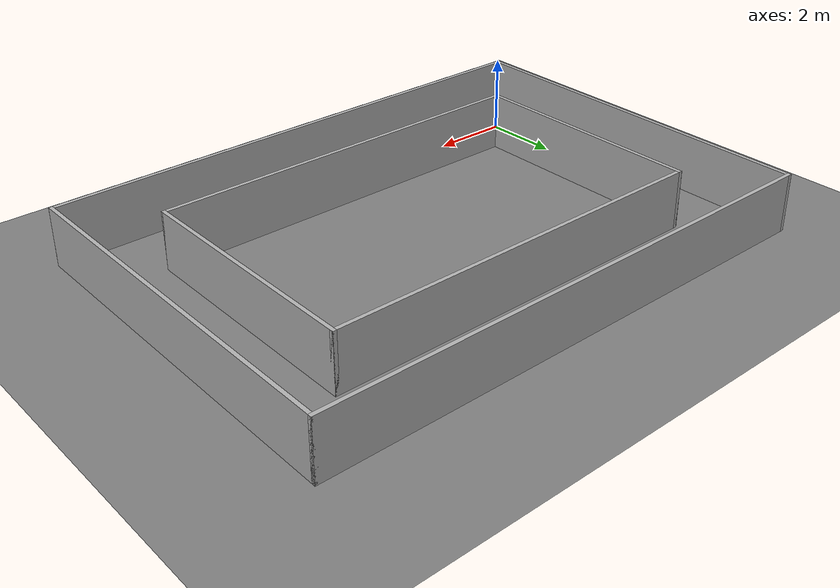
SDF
<?xml version="1.0"?>
<sdf version="1.9">
  <world name="corridor">
    <physics name="1ms" type="ignored"><max_step_size>0.004</max_step_size><real_time_factor>1.0</real_time_factor></physics>
    <plugin filename="gz-sim-physics-system" name="gz::sim::systems::Physics"/>
    <plugin filename="gz-sim-sensors-system" name="gz::sim::systems::Sensors"><render_engine>ogre2</render_engine></plugin>
    <plugin filename="gz-sim-scene-broadcaster-system" name="gz::sim::systems::SceneBroadcaster"/>
    <plugin filename="gz-sim-user-commands-system" name="gz::sim::systems::UserCommands"/>
    <light type="directional" name="sun"><cast_shadows>true</cast_shadows><pose>0 0 10 0 0 0</pose>
      <diffuse>0.9 0.9 0.9 1</diffuse><specular>0.2 0.2 0.2 1</specular><direction>-0.4 0.3 -0.9</direction></light>
    <model name="ground"><static>true</static>
      <link name="l"><collision name="c"><geometry><plane><normal>0 0 1</normal><size>200 200</size></plane></geometry></collision>
        <visual name="v"><geometry><plane><normal>0 0 1</normal><size>200 200</size></plane></geometry>
          <material><ambient>0.4 0.4 0.4 1</ambient><diffuse>0.5 0.5 0.5 1</diffuse></material></visual></link></model>

    <model name="outer_bot"><static>true</static>
      <link name="l"><pose>6.000 -0.900 0.750 0 0 0</pose>
        <collision name="c"><geometry><box><size>13.900 0.100 1.500</size></box></geometry></collision>
        <visual name="v"><geometry><box><size>13.900 0.100 1.500</size></box></geometry>
          <material><ambient>0.7 0.7 0.7 1</ambient><diffuse>0.7 0.7 0.7 1</diffuse></material></visual>
      </link></model>
    <model name="outer_top"><static>true</static>
      <link name="l"><pose>6.000 8.900 0.750 0 0 0</pose>
        <collision name="c"><geometry><box><size>13.900 0.100 1.500</size></box></geometry></collision>
        <visual name="v"><geometry><box><size>13.900 0.100 1.500</size></box></geometry>
          <material><ambient>0.7 0.7 0.7 1</ambient><diffuse>0.7 0.7 0.7 1</diffuse></material></visual>
      </link></model>
    <model name="outer_lft"><static>true</static>
      <link name="l"><pose>-0.900 4.000 0.750 0 0 0</pose>
        <collision name="c"><geometry><box><size>0.100 9.900 1.500</size></box></geometry></collision>
        <visual name="v"><geometry><box><size>0.100 9.900 1.500</size></box></geometry>
          <material><ambient>0.7 0.7 0.7 1</ambient><diffuse>0.7 0.7 0.7 1</diffuse></material></visual>
      </link></model>
    <model name="outer_rgt"><static>true</static>
      <link name="l"><pose>12.900 4.000 0.750 0 0 0</pose>
        <collision name="c"><geometry><box><size>0.100 9.900 1.500</size></box></geometry></collision>
        <visual name="v"><geometry><box><size>0.100 9.900 1.500</size></box></geometry>
          <material><ambient>0.7 0.7 0.7 1</ambient><diffuse>0.7 0.7 0.7 1</diffuse></material></visual>
      </link></model>
    <model name="inner_bot"><static>true</static>
      <link name="l"><pose>6.000 0.900 0.750 0 0 0</pose>
        <collision name="c"><geometry><box><size>10.300 0.100 1.500</size></box></geometry></collision>
        <visual name="v"><geometry><box><size>10.300 0.100 1.500</size></box></geometry>
          <material><ambient>0.7 0.7 0.7 1</ambient><diffuse>0.7 0.7 0.7 1</diffuse></material></visual>
      </link></model>
    <model name="inner_top"><static>true</static>
      <link name="l"><pose>6.000 7.100 0.750 0 0 0</pose>
        <collision name="c"><geometry><box><size>10.300 0.100 1.500</size></box></geometry></collision>
        <visual name="v"><geometry><box><size>10.300 0.100 1.500</size></box></geometry>
          <material><ambient>0.7 0.7 0.7 1</ambient><diffuse>0.7 0.7 0.7 1</diffuse></material></visual>
      </link></model>
    <model name="inner_lft"><static>true</static>
      <link name="l"><pose>0.900 4.000 0.750 0 0 0</pose>
        <collision name="c"><geometry><box><size>0.100 6.300 1.500</size></box></geometry></collision>
        <visual name="v"><geometry><box><size>0.100 6.300 1.500</size></box></geometry>
          <material><ambient>0.7 0.7 0.7 1</ambient><diffuse>0.7 0.7 0.7 1</diffuse></material></visual>
      </link></model>
    <model name="inner_rgt"><static>true</static>
      <link name="l"><pose>11.100 4.000 0.750 0 0 0</pose>
        <collision name="c"><geometry><box><size>0.100 6.300 1.500</size></box></geometry></collision>
        <visual name="v"><geometry><box><size>0.100 6.300 1.500</size></box></geometry>
          <material><ambient>0.7 0.7 0.7 1</ambient><diffuse>0.7 0.7 0.7 1</diffuse></material></visual>
      </link></model>
  </world>
</sdf>
